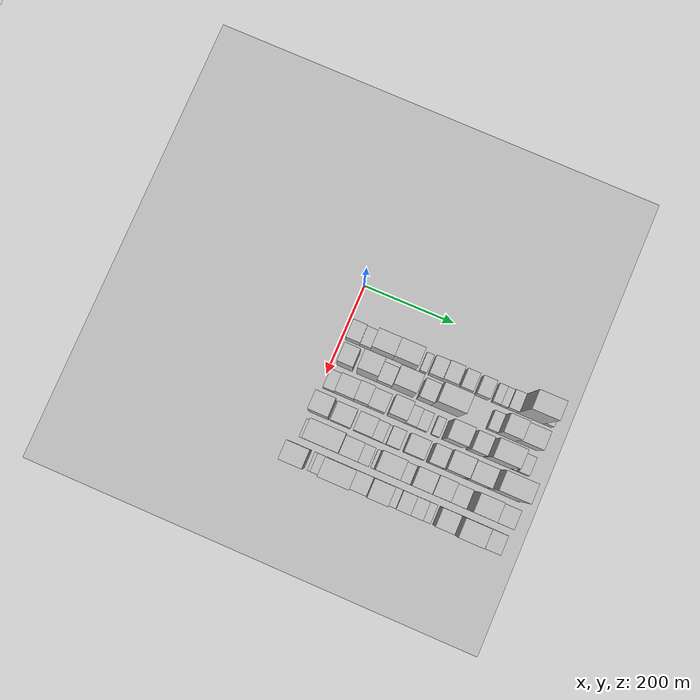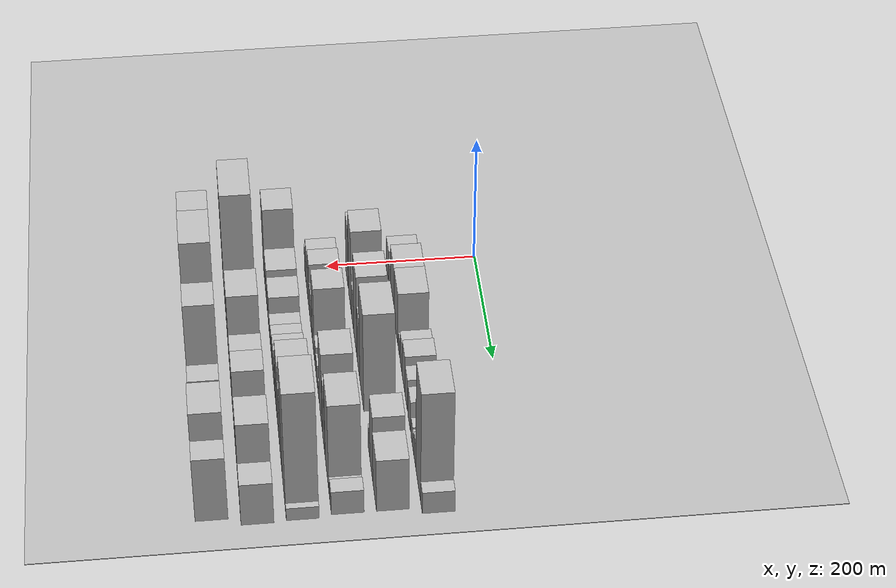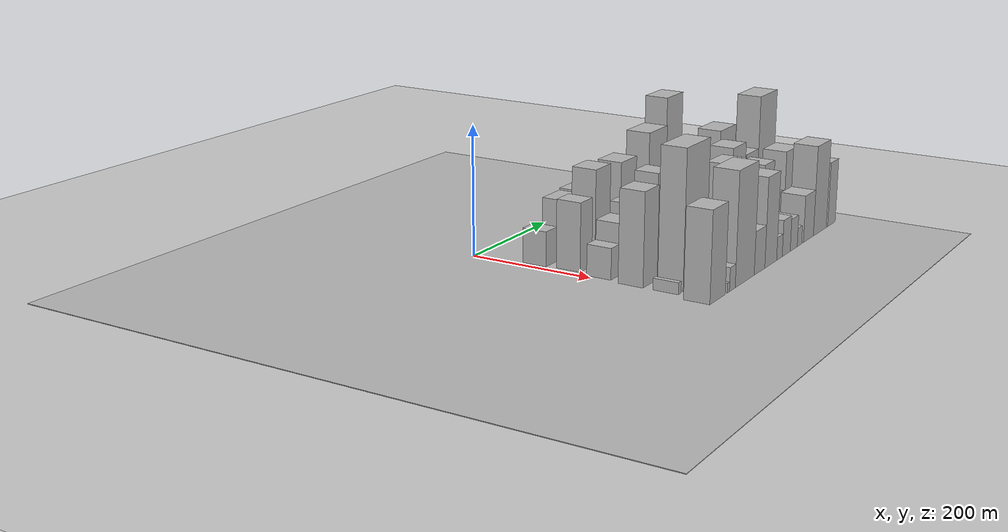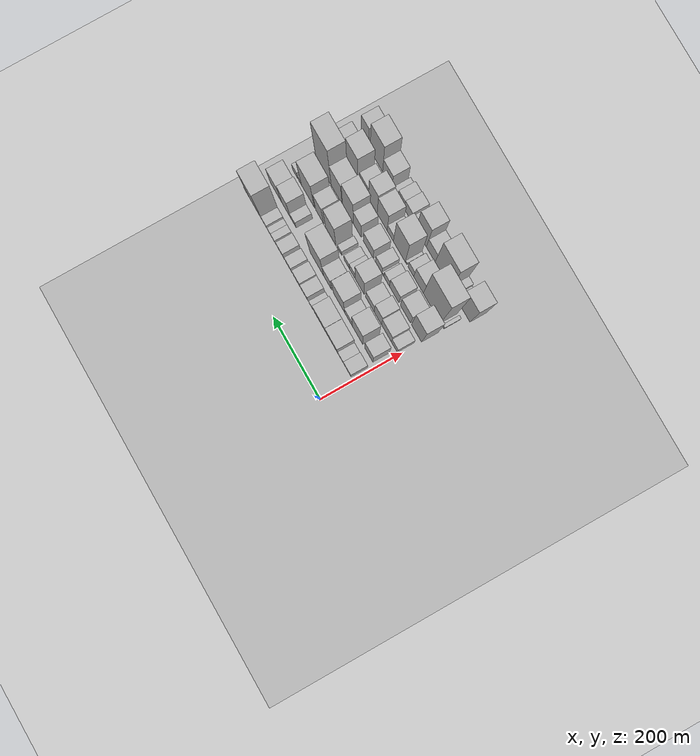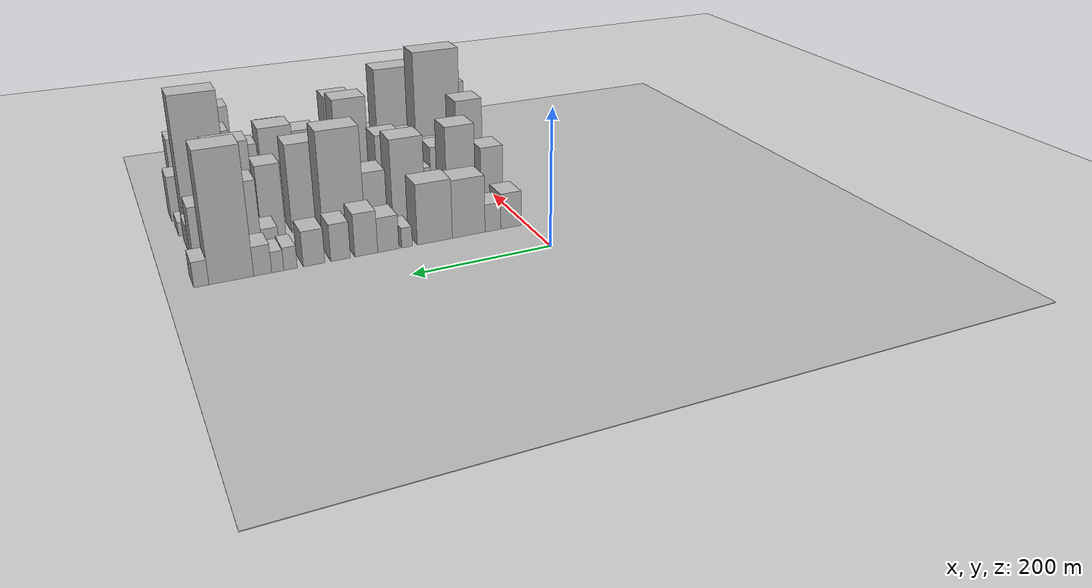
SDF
<sdf version="1.6">
 <world name="default">
  <include><name>ground_plane_1</name><uri>model://HANNAS_ground_plane</uri></include>
  <include>
   <name>ground_plane_2</name>
   <uri>model://HANNAS_ground_plane</uri>
   <pose>100 0 0  0 0 0</pose>
  </include>
  <model name="building_25">
   <static>1</static>
   <pose>100.0000 24.3123 0 0.000000 0.000000 0.000000</pose>
   <link name="link">
    <pose>0 0 27.00 0 0 0</pose>
    <collision name="collision"><geometry><box><size>40.0000 31.4314 54.0000</size></box></geometry></collision>
    <visual name="visual">
     <cast_shadows>0</cast_shadows>
     <geometry><box><size>40.0000 31.4314 54.0000</size></box></geometry>
     <material>
      <script>
       <uri>model://HANNAS_wall/materials/scripts</uri>
       <uri>model://HANNAS_wall/materials/textures</uri>
       <name>vrc/HANNAS_wall</name>
      </script>
     </material>
    </visual>
   </link>
  </model>
  <model name="building_26">
   <static>1</static>
   <pose>100.0000 52.2416 0 0.000000 0.000000 0.000000</pose>
   <link name="link">
    <pose>0 0 21.00 0 0 0</pose>
    <collision name="collision"><geometry><box><size>40.0000 24.4274 42.0000</size></box></geometry></collision>
    <visual name="visual">
     <cast_shadows>0</cast_shadows>
     <geometry><box><size>40.0000 24.4274 42.0000</size></box></geometry>
     <material>
      <script>
       <uri>model://HANNAS_wall/materials/scripts</uri>
       <uri>model://HANNAS_wall/materials/textures</uri>
       <name>vrc/HANNAS_wall</name>
      </script>
     </material>
    </visual>
   </link>
  </model>
  <model name="building_27">
   <static>1</static>
   <pose>100.0000 89.1585 0 0.000000 0.000000 0.000000</pose>
   <link name="link">
    <pose>0 0 43.50 0 0 0</pose>
    <collision name="collision"><geometry><box><size>40.0000 49.4064 87.0000</size></box></geometry></collision>
    <visual name="visual">
     <cast_shadows>0</cast_shadows>
     <geometry><box><size>40.0000 49.4064 87.0000</size></box></geometry>
     <material>
      <script>
       <uri>model://HANNAS_wall/materials/scripts</uri>
       <uri>model://HANNAS_wall/materials/textures</uri>
       <name>vrc/HANNAS_wall</name>
      </script>
     </material>
    </visual>
   </link>
  </model>
  <model name="building_28">
   <static>1</static>
   <pose>100.0000 139.6292 0 0.000000 0.000000 0.000000</pose>
   <link name="link">
    <pose>0 0 45.00 0 0 0</pose>
    <collision name="collision"><geometry><box><size>40.0000 51.5349 90.0000</size></box></geometry></collision>
    <visual name="visual">
     <cast_shadows>0</cast_shadows>
     <geometry><box><size>40.0000 51.5349 90.0000</size></box></geometry>
     <material>
      <script>
       <uri>model://HANNAS_wall/materials/scripts</uri>
       <uri>model://HANNAS_wall/materials/textures</uri>
       <name>vrc/HANNAS_wall</name>
      </script>
     </material>
    </visual>
   </link>
  </model>
  <model name="building_29">
   <static>1</static>
   <pose>100.0000 180.1665 0 0.000000 0.000000 0.000000</pose>
   <link name="link">
    <pose>0 0 15.00 0 0 0</pose>
    <collision name="collision"><geometry><box><size>40.0000 15.5398 30.0000</size></box></geometry></collision>
    <visual name="visual">
     <cast_shadows>0</cast_shadows>
     <geometry><box><size>40.0000 15.5398 30.0000</size></box></geometry>
     <material>
      <script>
       <uri>model://HANNAS_wall/materials/scripts</uri>
       <uri>model://HANNAS_wall/materials/textures</uri>
       <name>vrc/HANNAS_wall</name>
      </script>
     </material>
    </visual>
   </link>
  </model>
  <model name="building_30">
   <static>1</static>
   <pose>100.0000 206.9516 0 0.000000 0.000000 0.000000</pose>
   <link name="link">
    <pose>0 0 25.50 0 0 0</pose>
    <collision name="collision"><geometry><box><size>40.0000 30.0303 51.0000</size></box></geometry></collision>
    <visual name="visual">
     <cast_shadows>0</cast_shadows>
     <geometry><box><size>40.0000 30.0303 51.0000</size></box></geometry>
     <material>
      <script>
       <uri>model://HANNAS_wall/materials/scripts</uri>
       <uri>model://HANNAS_wall/materials/textures</uri>
       <name>vrc/HANNAS_wall</name>
      </script>
     </material>
    </visual>
   </link>
  </model>
  <model name="building_31">
   <static>1</static>
   <pose>100.0000 238.0096 0 0.000000 0.000000 0.000000</pose>
   <link name="link">
    <pose>0 0 31.50 0 0 0</pose>
    <collision name="collision"><geometry><box><size>40.0000 32.0857 63.0000</size></box></geometry></collision>
    <visual name="visual">
     <cast_shadows>0</cast_shadows>
     <geometry><box><size>40.0000 32.0857 63.0000</size></box></geometry>
     <material>
      <script>
       <uri>model://HANNAS_wall/materials/scripts</uri>
       <uri>model://HANNAS_wall/materials/textures</uri>
       <name>vrc/HANNAS_wall</name>
      </script>
     </material>
    </visual>
   </link>
  </model>
  <model name="building_32">
   <static>1</static>
   <pose>100.0000 273.5645 0 0.000000 0.000000 0.000000</pose>
   <link name="link">
    <pose>0 0 27.00 0 0 0</pose>
    <collision name="collision"><geometry><box><size>40.0000 27.0241 54.0000</size></box></geometry></collision>
    <visual name="visual">
     <cast_shadows>0</cast_shadows>
     <geometry><box><size>40.0000 27.0241 54.0000</size></box></geometry>
     <material>
      <script>
       <uri>model://HANNAS_wall/materials/scripts</uri>
       <uri>model://HANNAS_wall/materials/textures</uri>
       <name>vrc/HANNAS_wall</name>
      </script>
     </material>
    </visual>
   </link>
  </model>
  <model name="building_33">
   <static>1</static>
   <pose>100.0000 309.6315 0 0.000000 0.000000 0.000000</pose>
   <link name="link">
    <pose>0 0 25.50 0 0 0</pose>
    <collision name="collision"><geometry><box><size>40.0000 29.1099 51.0000</size></box></geometry></collision>
    <visual name="visual">
     <cast_shadows>0</cast_shadows>
     <geometry><box><size>40.0000 29.1099 51.0000</size></box></geometry>
     <material>
      <script>
       <uri>model://HANNAS_wall/materials/scripts</uri>
       <uri>model://HANNAS_wall/materials/textures</uri>
       <name>vrc/HANNAS_wall</name>
      </script>
     </material>
    </visual>
   </link>
  </model>
  <model name="building_34">
   <static>1</static>
   <pose>100.0000 341.0101 0 0.000000 0.000000 0.000000</pose>
   <link name="link">
    <pose>0 0 16.50 0 0 0</pose>
    <collision name="collision"><geometry><box><size>40.0000 17.6474 33.0000</size></box></geometry></collision>
    <visual name="visual">
     <cast_shadows>0</cast_shadows>
     <geometry><box><size>40.0000 17.6474 33.0000</size></box></geometry>
     <material>
      <script>
       <uri>model://HANNAS_wall/materials/scripts</uri>
       <uri>model://HANNAS_wall/materials/textures</uri>
       <name>vrc/HANNAS_wall</name>
      </script>
     </material>
    </visual>
   </link>
  </model>
  <model name="building_35">
   <static>1</static>
   <pose>100.0000 357.7709 0 0.000000 0.000000 0.000000</pose>
   <link name="link">
    <pose>0 0 15.00 0 0 0</pose>
    <collision name="collision"><geometry><box><size>40.0000 15.8742 30.0000</size></box></geometry></collision>
    <visual name="visual">
     <cast_shadows>0</cast_shadows>
     <geometry><box><size>40.0000 15.8742 30.0000</size></box></geometry>
     <material>
      <script>
       <uri>model://HANNAS_wall/materials/scripts</uri>
       <uri>model://HANNAS_wall/materials/textures</uri>
       <name>vrc/HANNAS_wall</name>
      </script>
     </material>
    </visual>
   </link>
  </model>
  <model name="building_36">
   <static>1</static>
   <pose>100.0000 377.3944 0 0.000000 0.000000 0.000000</pose>
   <link name="link">
    <pose>0 0 21.00 0 0 0</pose>
    <collision name="collision"><geometry><box><size>40.0000 23.3728 42.0000</size></box></geometry></collision>
    <visual name="visual">
     <cast_shadows>0</cast_shadows>
     <geometry><box><size>40.0000 23.3728 42.0000</size></box></geometry>
     <material>
      <script>
       <uri>model://HANNAS_wall/materials/scripts</uri>
       <uri>model://HANNAS_wall/materials/textures</uri>
       <name>vrc/HANNAS_wall</name>
      </script>
     </material>
    </visual>
   </link>
  </model>
  <model name="building_37">
   <static>1</static>
   <pose>100.0000 417.5311 0 0.000000 0.000000 0.000000</pose>
   <link name="link">
    <pose>0 0 91.50 0 0 0</pose>
    <collision name="collision"><geometry><box><size>40.0000 56.9005 183.0000</size></box></geometry></collision>
    <visual name="visual">
     <cast_shadows>0</cast_shadows>
     <geometry><box><size>40.0000 56.9005 183.0000</size></box></geometry>
     <material>
      <script>
       <uri>model://HANNAS_wall/materials/scripts</uri>
       <uri>model://HANNAS_wall/materials/textures</uri>
       <name>vrc/HANNAS_wall</name>
      </script>
     </material>
    </visual>
   </link>
  </model>
  <model name="building_38">
   <static>1</static>
   <pose>100.0000 455.4224 0 0.000000 0.000000 0.000000</pose>
   <link name="link">
    <pose>0 0 18.00 0 0 0</pose>
    <collision name="collision"><geometry><box><size>40.0000 18.8821 36.0000</size></box></geometry></collision>
    <visual name="visual">
     <cast_shadows>0</cast_shadows>
     <geometry><box><size>40.0000 18.8821 36.0000</size></box></geometry>
     <material>
      <script>
       <uri>model://HANNAS_wall/materials/scripts</uri>
       <uri>model://HANNAS_wall/materials/textures</uri>
       <name>vrc/HANNAS_wall</name>
      </script>
     </material>
    </visual>
   </link>
  </model>
  <model name="building_80">
   <static>1</static>
   <pose>155.0000 30.2844 0 0.000000 0.000000 0.000000</pose>
   <link name="link">
    <pose>0 0 52.50 0 0 0</pose>
    <collision name="collision"><geometry><box><size>40.0000 34.2755 105.0000</size></box></geometry></collision>
    <visual name="visual">
     <cast_shadows>0</cast_shadows>
     <geometry><box><size>40.0000 34.2755 105.0000</size></box></geometry>
     <material>
      <script>
       <uri>model://HANNAS_wall/materials/scripts</uri>
       <uri>model://HANNAS_wall/materials/textures</uri>
       <name>vrc/HANNAS_wall</name>
      </script>
     </material>
    </visual>
   </link>
  </model>
  <model name="building_81">
   <static>1</static>
   <pose>155.0000 78.4259 0 0.000000 0.000000 0.000000</pose>
   <link name="link">
    <pose>0 0 72.00 0 0 0</pose>
    <collision name="collision"><geometry><box><size>40.0000 44.0075 144.0000</size></box></geometry></collision>
    <visual name="visual">
     <cast_shadows>0</cast_shadows>
     <geometry><box><size>40.0000 44.0075 144.0000</size></box></geometry>
     <material>
      <script>
       <uri>model://HANNAS_wall/materials/scripts</uri>
       <uri>model://HANNAS_wall/materials/textures</uri>
       <name>vrc/HANNAS_wall</name>
      </script>
     </material>
    </visual>
   </link>
  </model>
  <model name="building_82">
   <static>1</static>
   <pose>155.0000 116.8655 0 0.000000 0.000000 0.000000</pose>
   <link name="link">
    <pose>0 0 30.00 0 0 0</pose>
    <collision name="collision"><geometry><box><size>40.0000 32.8717 60.0000</size></box></geometry></collision>
    <visual name="visual">
     <cast_shadows>0</cast_shadows>
     <geometry><box><size>40.0000 32.8717 60.0000</size></box></geometry>
     <material>
      <script>
       <uri>model://HANNAS_wall/materials/scripts</uri>
       <uri>model://HANNAS_wall/materials/textures</uri>
       <name>vrc/HANNAS_wall</name>
      </script>
     </material>
    </visual>
   </link>
  </model>
  <model name="building_83">
   <static>1</static>
   <pose>155.0000 157.4721 0 0.000000 0.000000 0.000000</pose>
   <link name="link">
    <pose>0 0 69.00 0 0 0</pose>
    <collision name="collision"><geometry><box><size>40.0000 48.3414 138.0000</size></box></geometry></collision>
    <visual name="visual">
     <cast_shadows>0</cast_shadows>
     <geometry><box><size>40.0000 48.3414 138.0000</size></box></geometry>
     <material>
      <script>
       <uri>model://HANNAS_wall/materials/scripts</uri>
       <uri>model://HANNAS_wall/materials/textures</uri>
       <name>vrc/HANNAS_wall</name>
      </script>
     </material>
    </visual>
   </link>
  </model>
  <model name="building_84">
   <static>1</static>
   <pose>155.0000 206.0429 0 0.000000 0.000000 0.000000</pose>
   <link name="link">
    <pose>0 0 48.00 0 0 0</pose>
    <collision name="collision"><geometry><box><size>40.0000 32.8003 96.0000</size></box></geometry></collision>
    <visual name="visual">
     <cast_shadows>0</cast_shadows>
     <geometry><box><size>40.0000 32.8003 96.0000</size></box></geometry>
     <material>
      <script>
       <uri>model://HANNAS_wall/materials/scripts</uri>
       <uri>model://HANNAS_wall/materials/textures</uri>
       <name>vrc/HANNAS_wall</name>
      </script>
     </material>
    </visual>
   </link>
  </model>
  <model name="building_85">
   <static>1</static>
   <pose>155.0000 252.2715 0 0.000000 0.000000 0.000000</pose>
   <link name="link">
    <pose>0 0 82.50 0 0 0</pose>
    <collision name="collision"><geometry><box><size>40.0000 59.6567 165.0000</size></box></geometry></collision>
    <visual name="visual">
     <cast_shadows>0</cast_shadows>
     <geometry><box><size>40.0000 59.6567 165.0000</size></box></geometry>
     <material>
      <script>
       <uri>model://HANNAS_wall/materials/scripts</uri>
       <uri>model://HANNAS_wall/materials/textures</uri>
       <name>vrc/HANNAS_wall</name>
      </script>
     </material>
    </visual>
   </link>
  </model>
  <model name="building_86">
   <static>1</static>
   <pose>155.0000 354.3469 0 0.000000 0.000000 0.000000</pose>
   <link name="link">
    <pose>0 0 19.50 0 0 0</pose>
    <collision name="collision"><geometry><box><size>40.0000 22.8314 39.0000</size></box></geometry></collision>
    <visual name="visual">
     <cast_shadows>0</cast_shadows>
     <geometry><box><size>40.0000 22.8314 39.0000</size></box></geometry>
     <material>
      <script>
       <uri>model://HANNAS_wall/materials/scripts</uri>
       <uri>model://HANNAS_wall/materials/textures</uri>
       <name>vrc/HANNAS_wall</name>
      </script>
     </material>
    </visual>
   </link>
  </model>
  <model name="building_87">
   <static>1</static>
   <pose>155.0000 386.0031 0 0.000000 0.000000 0.000000</pose>
   <link name="link">
    <pose>0 0 55.50 0 0 0</pose>
    <collision name="collision"><geometry><box><size>40.0000 40.4810 111.0000</size></box></geometry></collision>
    <visual name="visual">
     <cast_shadows>0</cast_shadows>
     <geometry><box><size>40.0000 40.4810 111.0000</size></box></geometry>
     <material>
      <script>
       <uri>model://HANNAS_wall/materials/scripts</uri>
       <uri>model://HANNAS_wall/materials/textures</uri>
       <name>vrc/HANNAS_wall</name>
      </script>
     </material>
    </visual>
   </link>
  </model>
  <model name="building_88">
   <static>1</static>
   <pose>155.0000 430.9013 0 0.000000 0.000000 0.000000</pose>
   <link name="link">
    <pose>0 0 43.50 0 0 0</pose>
    <collision name="collision"><geometry><box><size>40.0000 49.3153 87.0000</size></box></geometry></collision>
    <visual name="visual">
     <cast_shadows>0</cast_shadows>
     <geometry><box><size>40.0000 49.3153 87.0000</size></box></geometry>
     <material>
      <script>
       <uri>model://HANNAS_wall/materials/scripts</uri>
       <uri>model://HANNAS_wall/materials/textures</uri>
       <name>vrc/HANNAS_wall</name>
      </script>
     </material>
    </visual>
   </link>
  </model>
  <model name="building_125">
   <static>1</static>
   <pose>210.0000 18.6129 0 0.000000 0.000000 0.000000</pose>
   <link name="link">
    <pose>0 0 24.00 0 0 0</pose>
    <collision name="collision"><geometry><box><size>40.0000 25.7530 48.0000</size></box></geometry></collision>
    <visual name="visual">
     <cast_shadows>0</cast_shadows>
     <geometry><box><size>40.0000 25.7530 48.0000</size></box></geometry>
     <material>
      <script>
       <uri>model://HANNAS_wall/materials/scripts</uri>
       <uri>model://HANNAS_wall/materials/textures</uri>
       <name>vrc/HANNAS_wall</name>
      </script>
     </material>
    </visual>
   </link>
  </model>
  <model name="building_126">
   <static>1</static>
   <pose>210.0000 52.4357 0 0.000000 0.000000 0.000000</pose>
   <link name="link">
    <pose>0 0 39.00 0 0 0</pose>
    <collision name="collision"><geometry><box><size>40.0000 41.8926 78.0000</size></box></geometry></collision>
    <visual name="visual">
     <cast_shadows>0</cast_shadows>
     <geometry><box><size>40.0000 41.8926 78.0000</size></box></geometry>
     <material>
      <script>
       <uri>model://HANNAS_wall/materials/scripts</uri>
       <uri>model://HANNAS_wall/materials/textures</uri>
       <name>vrc/HANNAS_wall</name>
      </script>
     </material>
    </visual>
   </link>
  </model>
  <model name="building_127">
   <static>1</static>
   <pose>210.0000 88.7464 0 0.000000 0.000000 0.000000</pose>
   <link name="link">
    <pose>0 0 48.00 0 0 0</pose>
    <collision name="collision"><geometry><box><size>40.0000 30.7289 96.0000</size></box></geometry></collision>
    <visual name="visual">
     <cast_shadows>0</cast_shadows>
     <geometry><box><size>40.0000 30.7289 96.0000</size></box></geometry>
     <material>
      <script>
       <uri>model://HANNAS_wall/materials/scripts</uri>
       <uri>model://HANNAS_wall/materials/textures</uri>
       <name>vrc/HANNAS_wall</name>
      </script>
     </material>
    </visual>
   </link>
  </model>
  <model name="building_128">
   <static>1</static>
   <pose>210.0000 122.4856 0 0.000000 0.000000 0.000000</pose>
   <link name="link">
    <pose>0 0 33.00 0 0 0</pose>
    <collision name="collision"><geometry><box><size>40.0000 36.7495 66.0000</size></box></geometry></collision>
    <visual name="visual">
     <cast_shadows>0</cast_shadows>
     <geometry><box><size>40.0000 36.7495 66.0000</size></box></geometry>
     <material>
      <script>
       <uri>model://HANNAS_wall/materials/scripts</uri>
       <uri>model://HANNAS_wall/materials/textures</uri>
       <name>vrc/HANNAS_wall</name>
      </script>
     </material>
    </visual>
   </link>
  </model>
  <model name="building_129">
   <static>1</static>
   <pose>210.0000 166.2036 0 0.000000 0.000000 0.000000</pose>
   <link name="link">
    <pose>0 0 63.00 0 0 0</pose>
    <collision name="collision"><geometry><box><size>40.0000 38.6865 126.0000</size></box></geometry></collision>
    <visual name="visual">
     <cast_shadows>0</cast_shadows>
     <geometry><box><size>40.0000 38.6865 126.0000</size></box></geometry>
     <material>
      <script>
       <uri>model://HANNAS_wall/materials/scripts</uri>
       <uri>model://HANNAS_wall/materials/textures</uri>
       <name>vrc/HANNAS_wall</name>
      </script>
     </material>
    </visual>
   </link>
  </model>
  <model name="building_130">
   <static>1</static>
   <pose>210.0000 197.9665 0 0.000000 0.000000 0.000000</pose>
   <link name="link">
    <pose>0 0 24.00 0 0 0</pose>
    <collision name="collision"><geometry><box><size>40.0000 24.8393 48.0000</size></box></geometry></collision>
    <visual name="visual">
     <cast_shadows>0</cast_shadows>
     <geometry><box><size>40.0000 24.8393 48.0000</size></box></geometry>
     <material>
      <script>
       <uri>model://HANNAS_wall/materials/scripts</uri>
       <uri>model://HANNAS_wall/materials/textures</uri>
       <name>vrc/HANNAS_wall</name>
      </script>
     </material>
    </visual>
   </link>
  </model>
  <model name="building_131">
   <static>1</static>
   <pose>210.0000 221.9935 0 0.000000 0.000000 0.000000</pose>
   <link name="link">
    <pose>0 0 19.50 0 0 0</pose>
    <collision name="collision"><geometry><box><size>40.0000 23.2146 39.0000</size></box></geometry></collision>
    <visual name="visual">
     <cast_shadows>0</cast_shadows>
     <geometry><box><size>40.0000 23.2146 39.0000</size></box></geometry>
     <material>
      <script>
       <uri>model://HANNAS_wall/materials/scripts</uri>
       <uri>model://HANNAS_wall/materials/textures</uri>
       <name>vrc/HANNAS_wall</name>
      </script>
     </material>
    </visual>
   </link>
  </model>
  <model name="building_132">
   <static>1</static>
   <pose>210.0000 252.3618 0 0.000000 0.000000 0.000000</pose>
   <link name="link">
    <pose>0 0 15.00 0 0 0</pose>
    <collision name="collision"><geometry><box><size>40.0000 17.5220 30.0000</size></box></geometry></collision>
    <visual name="visual">
     <cast_shadows>0</cast_shadows>
     <geometry><box><size>40.0000 17.5220 30.0000</size></box></geometry>
     <material>
      <script>
       <uri>model://HANNAS_wall/materials/scripts</uri>
       <uri>model://HANNAS_wall/materials/textures</uri>
       <name>vrc/HANNAS_wall</name>
      </script>
     </material>
    </visual>
   </link>
  </model>
  <model name="building_133">
   <static>1</static>
   <pose>210.0000 290.5511 0 0.000000 0.000000 0.000000</pose>
   <link name="link">
    <pose>0 0 66.00 0 0 0</pose>
    <collision name="collision"><geometry><box><size>40.0000 44.8566 132.0000</size></box></geometry></collision>
    <visual name="visual">
     <cast_shadows>0</cast_shadows>
     <geometry><box><size>40.0000 44.8566 132.0000</size></box></geometry>
     <material>
      <script>
       <uri>model://HANNAS_wall/materials/scripts</uri>
       <uri>model://HANNAS_wall/materials/textures</uri>
       <name>vrc/HANNAS_wall</name>
      </script>
     </material>
    </visual>
   </link>
  </model>
  <model name="building_134">
   <static>1</static>
   <pose>210.0000 338.9120 0 0.000000 0.000000 0.000000</pose>
   <link name="link">
    <pose>0 0 54.00 0 0 0</pose>
    <collision name="collision"><geometry><box><size>40.0000 33.8652 108.0000</size></box></geometry></collision>
    <visual name="visual">
     <cast_shadows>0</cast_shadows>
     <geometry><box><size>40.0000 33.8652 108.0000</size></box></geometry>
     <material>
      <script>
       <uri>model://HANNAS_wall/materials/scripts</uri>
       <uri>model://HANNAS_wall/materials/textures</uri>
       <name>vrc/HANNAS_wall</name>
      </script>
     </material>
    </visual>
   </link>
  </model>
  <model name="building_135">
   <static>1</static>
   <pose>210.0000 389.4150 0 0.000000 0.000000 0.000000</pose>
   <link name="link">
    <pose>0 0 73.50 0 0 0</pose>
    <collision name="collision"><geometry><box><size>40.0000 57.1408 147.0000</size></box></geometry></collision>
    <visual name="visual">
     <cast_shadows>0</cast_shadows>
     <geometry><box><size>40.0000 57.1408 147.0000</size></box></geometry>
     <material>
      <script>
       <uri>model://HANNAS_wall/materials/scripts</uri>
       <uri>model://HANNAS_wall/materials/textures</uri>
       <name>vrc/HANNAS_wall</name>
      </script>
     </material>
    </visual>
   </link>
  </model>
  <model name="building_136">
   <static>1</static>
   <pose>210.0000 424.0996 0 0.000000 0.000000 0.000000</pose>
   <link name="link">
    <pose>0 0 13.50 0 0 0</pose>
    <collision name="collision"><geometry><box><size>40.0000 12.2284 27.0000</size></box></geometry></collision>
    <visual name="visual">
     <cast_shadows>0</cast_shadows>
     <geometry><box><size>40.0000 12.2284 27.0000</size></box></geometry>
     <material>
      <script>
       <uri>model://HANNAS_wall/materials/scripts</uri>
       <uri>model://HANNAS_wall/materials/textures</uri>
       <name>vrc/HANNAS_wall</name>
      </script>
     </material>
    </visual>
   </link>
  </model>
  <model name="building_137">
   <static>1</static>
   <pose>210.0000 444.4427 0 0.000000 0.000000 0.000000</pose>
   <link name="link">
    <pose>0 0 19.50 0 0 0</pose>
    <collision name="collision"><geometry><box><size>40.0000 22.4580 39.0000</size></box></geometry></collision>
    <visual name="visual">
     <cast_shadows>0</cast_shadows>
     <geometry><box><size>40.0000 22.4580 39.0000</size></box></geometry>
     <material>
      <script>
       <uri>model://HANNAS_wall/materials/scripts</uri>
       <uri>model://HANNAS_wall/materials/textures</uri>
       <name>vrc/HANNAS_wall</name>
      </script>
     </material>
    </visual>
   </link>
  </model>
  <model name="building_175">
   <static>1</static>
   <pose>265.0000 20.9119 0 0.000000 0.000000 0.000000</pose>
   <link name="link">
    <pose>0 0 70.50 0 0 0</pose>
    <collision name="collision"><geometry><box><size>40.0000 42.7556 141.0000</size></box></geometry></collision>
    <visual name="visual">
     <cast_shadows>0</cast_shadows>
     <geometry><box><size>40.0000 42.7556 141.0000</size></box></geometry>
     <material>
      <script>
       <uri>model://HANNAS_wall/materials/scripts</uri>
       <uri>model://HANNAS_wall/materials/textures</uri>
       <name>vrc/HANNAS_wall</name>
      </script>
     </material>
    </visual>
   </link>
  </model>
  <model name="building_176">
   <static>1</static>
   <pose>265.0000 67.9492 0 0.000000 0.000000 0.000000</pose>
   <link name="link">
    <pose>0 0 39.00 0 0 0</pose>
    <collision name="collision"><geometry><box><size>40.0000 43.3189 78.0000</size></box></geometry></collision>
    <visual name="visual">
     <cast_shadows>0</cast_shadows>
     <geometry><box><size>40.0000 43.3189 78.0000</size></box></geometry>
     <material>
      <script>
       <uri>model://HANNAS_wall/materials/scripts</uri>
       <uri>model://HANNAS_wall/materials/textures</uri>
       <name>vrc/HANNAS_wall</name>
      </script>
     </material>
    </visual>
   </link>
  </model>
  <model name="building_177">
   <static>1</static>
   <pose>265.0000 115.8186 0 0.000000 0.000000 0.000000</pose>
   <link name="link">
    <pose>0 0 36.00 0 0 0</pose>
    <collision name="collision"><geometry><box><size>40.0000 40.4199 72.0000</size></box></geometry></collision>
    <visual name="visual">
     <cast_shadows>0</cast_shadows>
     <geometry><box><size>40.0000 40.4199 72.0000</size></box></geometry>
     <material>
      <script>
       <uri>model://HANNAS_wall/materials/scripts</uri>
       <uri>model://HANNAS_wall/materials/textures</uri>
       <name>vrc/HANNAS_wall</name>
      </script>
     </material>
    </visual>
   </link>
  </model>
  <model name="building_178">
   <static>1</static>
   <pose>265.0000 147.9122 0 0.000000 0.000000 0.000000</pose>
   <link name="link">
    <pose>0 0 22.50 0 0 0</pose>
    <collision name="collision"><geometry><box><size>40.0000 23.7673 45.0000</size></box></geometry></collision>
    <visual name="visual">
     <cast_shadows>0</cast_shadows>
     <geometry><box><size>40.0000 23.7673 45.0000</size></box></geometry>
     <material>
      <script>
       <uri>model://HANNAS_wall/materials/scripts</uri>
       <uri>model://HANNAS_wall/materials/textures</uri>
       <name>vrc/HANNAS_wall</name>
      </script>
     </material>
    </visual>
   </link>
  </model>
  <model name="building_179">
   <static>1</static>
   <pose>265.0000 163.5779 0 0.000000 0.000000 0.000000</pose>
   <link name="link">
    <pose>0 0 9.00 0 0 0</pose>
    <collision name="collision"><geometry><box><size>40.0000 7.5643 18.0000</size></box></geometry></collision>
    <visual name="visual">
     <cast_shadows>0</cast_shadows>
     <geometry><box><size>40.0000 7.5643 18.0000</size></box></geometry>
     <material>
      <script>
       <uri>model://HANNAS_wall/materials/scripts</uri>
       <uri>model://HANNAS_wall/materials/textures</uri>
       <name>vrc/HANNAS_wall</name>
      </script>
     </material>
    </visual>
   </link>
  </model>
  <model name="building_180">
   <static>1</static>
   <pose>265.0000 181.6731 0 0.000000 0.000000 0.000000</pose>
   <link name="link">
    <pose>0 0 27.00 0 0 0</pose>
    <collision name="collision"><geometry><box><size>40.0000 28.6261 54.0000</size></box></geometry></collision>
    <visual name="visual">
     <cast_shadows>0</cast_shadows>
     <geometry><box><size>40.0000 28.6261 54.0000</size></box></geometry>
     <material>
      <script>
       <uri>model://HANNAS_wall/materials/scripts</uri>
       <uri>model://HANNAS_wall/materials/textures</uri>
       <name>vrc/HANNAS_wall</name>
      </script>
     </material>
    </visual>
   </link>
  </model>
  <model name="building_181">
   <static>1</static>
   <pose>265.0000 226.4719 0 0.000000 0.000000 0.000000</pose>
   <link name="link">
    <pose>0 0 36.00 0 0 0</pose>
    <collision name="collision"><geometry><box><size>40.0000 42.9714 72.0000</size></box></geometry></collision>
    <visual name="visual">
     <cast_shadows>0</cast_shadows>
     <geometry><box><size>40.0000 42.9714 72.0000</size></box></geometry>
     <material>
      <script>
       <uri>model://HANNAS_wall/materials/scripts</uri>
       <uri>model://HANNAS_wall/materials/textures</uri>
       <name>vrc/HANNAS_wall</name>
      </script>
     </material>
    </visual>
   </link>
  </model>
  <model name="building_182">
   <static>1</static>
   <pose>265.0000 273.5150 0 0.000000 0.000000 0.000000</pose>
   <link name="link">
    <pose>0 0 46.50 0 0 0</pose>
    <collision name="collision"><geometry><box><size>40.0000 33.1149 93.0000</size></box></geometry></collision>
    <visual name="visual">
     <cast_shadows>0</cast_shadows>
     <geometry><box><size>40.0000 33.1149 93.0000</size></box></geometry>
     <material>
      <script>
       <uri>model://HANNAS_wall/materials/scripts</uri>
       <uri>model://HANNAS_wall/materials/textures</uri>
       <name>vrc/HANNAS_wall</name>
      </script>
     </material>
    </visual>
   </link>
  </model>
  <model name="building_183">
   <static>1</static>
   <pose>265.0000 313.5343 0 0.000000 0.000000 0.000000</pose>
   <link name="link">
    <pose>0 0 70.50 0 0 0</pose>
    <collision name="collision"><geometry><box><size>40.0000 46.9236 141.0000</size></box></geometry></collision>
    <visual name="visual">
     <cast_shadows>0</cast_shadows>
     <geometry><box><size>40.0000 46.9236 141.0000</size></box></geometry>
     <material>
      <script>
       <uri>model://HANNAS_wall/materials/scripts</uri>
       <uri>model://HANNAS_wall/materials/textures</uri>
       <name>vrc/HANNAS_wall</name>
      </script>
     </material>
    </visual>
   </link>
  </model>
  <model name="building_184">
   <static>1</static>
   <pose>265.0000 363.2095 0 0.000000 0.000000 0.000000</pose>
   <link name="link">
    <pose>0 0 60.00 0 0 0</pose>
    <collision name="collision"><geometry><box><size>40.0000 46.4269 120.0000</size></box></geometry></collision>
    <visual name="visual">
     <cast_shadows>0</cast_shadows>
     <geometry><box><size>40.0000 46.4269 120.0000</size></box></geometry>
     <material>
      <script>
       <uri>model://HANNAS_wall/materials/scripts</uri>
       <uri>model://HANNAS_wall/materials/textures</uri>
       <name>vrc/HANNAS_wall</name>
      </script>
     </material>
    </visual>
   </link>
  </model>
  <model name="building_185">
   <static>1</static>
   <pose>265.0000 418.6877 0 0.000000 0.000000 0.000000</pose>
   <link name="link">
    <pose>0 0 102.00 0 0 0</pose>
    <collision name="collision"><geometry><box><size>40.0000 64.5295 204.0000</size></box></geometry></collision>
    <visual name="visual">
     <cast_shadows>0</cast_shadows>
     <geometry><box><size>40.0000 64.5295 204.0000</size></box></geometry>
     <material>
      <script>
       <uri>model://HANNAS_wall/materials/scripts</uri>
       <uri>model://HANNAS_wall/materials/textures</uri>
       <name>vrc/HANNAS_wall</name>
      </script>
     </material>
    </visual>
   </link>
  </model>
  <model name="building_186">
   <static>1</static>
   <pose>265.0000 455.5057 0 0.000000 0.000000 0.000000</pose>
   <link name="link">
    <pose>0 0 10.50 0 0 0</pose>
    <collision name="collision"><geometry><box><size>40.0000 9.1065 21.0000</size></box></geometry></collision>
    <visual name="visual">
     <cast_shadows>0</cast_shadows>
     <geometry><box><size>40.0000 9.1065 21.0000</size></box></geometry>
     <material>
      <script>
       <uri>model://HANNAS_wall/materials/scripts</uri>
       <uri>model://HANNAS_wall/materials/textures</uri>
       <name>vrc/HANNAS_wall</name>
      </script>
     </material>
    </visual>
   </link>
  </model>
  <model name="building_221">
   <static>1</static>
   <pose>320.0000 4.4426 0 0.000000 0.000000 0.000000</pose>
   <link name="link">
    <pose>0 0 9.00 0 0 0</pose>
    <collision name="collision"><geometry><box><size>40.0000 8.3928 18.0000</size></box></geometry></collision>
    <visual name="visual">
     <cast_shadows>0</cast_shadows>
     <geometry><box><size>40.0000 8.3928 18.0000</size></box></geometry>
     <material>
      <script>
       <uri>model://HANNAS_wall/materials/scripts</uri>
       <uri>model://HANNAS_wall/materials/textures</uri>
       <name>vrc/HANNAS_wall</name>
      </script>
     </material>
    </visual>
   </link>
  </model>
  <model name="building_222">
   <static>1</static>
   <pose>320.0000 51.2324 0 0.000000 0.000000 0.000000</pose>
   <link name="link">
    <pose>0 0 103.50 0 0 0</pose>
    <collision name="collision"><geometry><box><size>40.0000 73.1867 207.0000</size></box></geometry></collision>
    <visual name="visual">
     <cast_shadows>0</cast_shadows>
     <geometry><box><size>40.0000 73.1867 207.0000</size></box></geometry>
     <material>
      <script>
       <uri>model://HANNAS_wall/materials/scripts</uri>
       <uri>model://HANNAS_wall/materials/textures</uri>
       <name>vrc/HANNAS_wall</name>
      </script>
     </material>
    </visual>
   </link>
  </model>
  <model name="building_223">
   <static>1</static>
   <pose>320.0000 108.2170 0 0.000000 0.000000 0.000000</pose>
   <link name="link">
    <pose>0 0 40.50 0 0 0</pose>
    <collision name="collision"><geometry><box><size>40.0000 40.7826 81.0000</size></box></geometry></collision>
    <visual name="visual">
     <cast_shadows>0</cast_shadows>
     <geometry><box><size>40.0000 40.7826 81.0000</size></box></geometry>
     <material>
      <script>
       <uri>model://HANNAS_wall/materials/scripts</uri>
       <uri>model://HANNAS_wall/materials/textures</uri>
       <name>vrc/HANNAS_wall</name>
      </script>
     </material>
    </visual>
   </link>
  </model>
  <model name="building_224">
   <static>1</static>
   <pose>320.0000 140.7177 0 0.000000 0.000000 0.000000</pose>
   <link name="link">
    <pose>0 0 22.50 0 0 0</pose>
    <collision name="collision"><geometry><box><size>40.0000 24.2188 45.0000</size></box></geometry></collision>
    <visual name="visual">
     <cast_shadows>0</cast_shadows>
     <geometry><box><size>40.0000 24.2188 45.0000</size></box></geometry>
     <material>
      <script>
       <uri>model://HANNAS_wall/materials/scripts</uri>
       <uri>model://HANNAS_wall/materials/textures</uri>
       <name>vrc/HANNAS_wall</name>
      </script>
     </material>
    </visual>
   </link>
  </model>
  <model name="building_225">
   <static>1</static>
   <pose>320.0000 161.2985 0 0.000000 0.000000 0.000000</pose>
   <link name="link">
    <pose>0 0 7.50 0 0 0</pose>
    <collision name="collision"><geometry><box><size>40.0000 6.9427 15.0000</size></box></geometry></collision>
    <visual name="visual">
     <cast_shadows>0</cast_shadows>
     <geometry><box><size>40.0000 6.9427 15.0000</size></box></geometry>
     <material>
      <script>
       <uri>model://HANNAS_wall/materials/scripts</uri>
       <uri>model://HANNAS_wall/materials/textures</uri>
       <name>vrc/HANNAS_wall</name>
      </script>
     </material>
    </visual>
   </link>
  </model>
  <model name="building_226">
   <static>1</static>
   <pose>320.0000 190.2088 0 0.000000 0.000000 0.000000</pose>
   <link name="link">
    <pose>0 0 75.00 0 0 0</pose>
    <collision name="collision"><geometry><box><size>40.0000 50.8778 150.0000</size></box></geometry></collision>
    <visual name="visual">
     <cast_shadows>0</cast_shadows>
     <geometry><box><size>40.0000 50.8778 150.0000</size></box></geometry>
     <material>
      <script>
       <uri>model://HANNAS_wall/materials/scripts</uri>
       <uri>model://HANNAS_wall/materials/textures</uri>
       <name>vrc/HANNAS_wall</name>
      </script>
     </material>
    </visual>
   </link>
  </model>
  <model name="building_227">
   <static>1</static>
   <pose>320.0000 229.1338 0 0.000000 0.000000 0.000000</pose>
   <link name="link">
    <pose>0 0 22.50 0 0 0</pose>
    <collision name="collision"><geometry><box><size>40.0000 26.9721 45.0000</size></box></geometry></collision>
    <visual name="visual">
     <cast_shadows>0</cast_shadows>
     <geometry><box><size>40.0000 26.9721 45.0000</size></box></geometry>
     <material>
      <script>
       <uri>model://HANNAS_wall/materials/scripts</uri>
       <uri>model://HANNAS_wall/materials/textures</uri>
       <name>vrc/HANNAS_wall</name>
      </script>
     </material>
    </visual>
   </link>
  </model>
  <model name="building_228">
   <static>1</static>
   <pose>320.0000 263.7625 0 0.000000 0.000000 0.000000</pose>
   <link name="link">
    <pose>0 0 55.50 0 0 0</pose>
    <collision name="collision"><geometry><box><size>40.0000 42.2855 111.0000</size></box></geometry></collision>
    <visual name="visual">
     <cast_shadows>0</cast_shadows>
     <geometry><box><size>40.0000 42.2855 111.0000</size></box></geometry>
     <material>
      <script>
       <uri>model://HANNAS_wall/materials/scripts</uri>
       <uri>model://HANNAS_wall/materials/textures</uri>
       <name>vrc/HANNAS_wall</name>
      </script>
     </material>
    </visual>
   </link>
  </model>
  <model name="building_229">
   <static>1</static>
   <pose>320.0000 303.6570 0 0.000000 0.000000 0.000000</pose>
   <link name="link">
    <pose>0 0 61.50 0 0 0</pose>
    <collision name="collision"><geometry><box><size>40.0000 37.5035 123.0000</size></box></geometry></collision>
    <visual name="visual">
     <cast_shadows>0</cast_shadows>
     <geometry><box><size>40.0000 37.5035 123.0000</size></box></geometry>
     <material>
      <script>
       <uri>model://HANNAS_wall/materials/scripts</uri>
       <uri>model://HANNAS_wall/materials/textures</uri>
       <name>vrc/HANNAS_wall</name>
      </script>
     </material>
    </visual>
   </link>
  </model>
  <model name="building_230">
   <static>1</static>
   <pose>320.0000 341.9934 0 0.000000 0.000000 0.000000</pose>
   <link name="link">
    <pose>0 0 33.00 0 0 0</pose>
    <collision name="collision"><geometry><box><size>40.0000 39.1692 66.0000</size></box></geometry></collision>
    <visual name="visual">
     <cast_shadows>0</cast_shadows>
     <geometry><box><size>40.0000 39.1692 66.0000</size></box></geometry>
     <material>
      <script>
       <uri>model://HANNAS_wall/materials/scripts</uri>
       <uri>model://HANNAS_wall/materials/textures</uri>
       <name>vrc/HANNAS_wall</name>
      </script>
     </material>
    </visual>
   </link>
  </model>
  <model name="building_231">
   <static>1</static>
   <pose>320.0000 393.3136 0 0.000000 0.000000 0.000000</pose>
   <link name="link">
    <pose>0 0 63.00 0 0 0</pose>
    <collision name="collision"><geometry><box><size>40.0000 49.4712 126.0000</size></box></geometry></collision>
    <visual name="visual">
     <cast_shadows>0</cast_shadows>
     <geometry><box><size>40.0000 49.4712 126.0000</size></box></geometry>
     <material>
      <script>
       <uri>model://HANNAS_wall/materials/scripts</uri>
       <uri>model://HANNAS_wall/materials/textures</uri>
       <name>vrc/HANNAS_wall</name>
      </script>
     </material>
    </visual>
   </link>
  </model>
  <model name="building_232">
   <static>1</static>
   <pose>320.0000 443.6012 0 0.000000 0.000000 0.000000</pose>
   <link name="link">
    <pose>0 0 34.50 0 0 0</pose>
    <collision name="collision"><geometry><box><size>40.0000 37.1041 69.0000</size></box></geometry></collision>
    <visual name="visual">
     <cast_shadows>0</cast_shadows>
     <geometry><box><size>40.0000 37.1041 69.0000</size></box></geometry>
     <material>
      <script>
       <uri>model://HANNAS_wall/materials/scripts</uri>
       <uri>model://HANNAS_wall/materials/textures</uri>
       <name>vrc/HANNAS_wall</name>
      </script>
     </material>
    </visual>
   </link>
  </model>
  <model name="building_268">
   <static>1</static>
   <pose>375.0000 10.4688 0 0.000000 0.000000 0.000000</pose>
   <link name="link">
    <pose>0 0 67.50 0 0 0</pose>
    <collision name="collision"><geometry><box><size>40.0000 49.3656 135.0000</size></box></geometry></collision>
    <visual name="visual">
     <cast_shadows>0</cast_shadows>
     <geometry><box><size>40.0000 49.3656 135.0000</size></box></geometry>
     <material>
      <script>
       <uri>model://HANNAS_wall/materials/scripts</uri>
       <uri>model://HANNAS_wall/materials/textures</uri>
       <name>vrc/HANNAS_wall</name>
      </script>
     </material>
    </visual>
   </link>
  </model>
  <model name="building_269">
   <static>1</static>
   <pose>375.0000 45.5613 0 0.000000 0.000000 0.000000</pose>
   <link name="link">
    <pose>0 0 7.50 0 0 0</pose>
    <collision name="collision"><geometry><box><size>40.0000 6.8195 15.0000</size></box></geometry></collision>
    <visual name="visual">
     <cast_shadows>0</cast_shadows>
     <geometry><box><size>40.0000 6.8195 15.0000</size></box></geometry>
     <material>
      <script>
       <uri>model://HANNAS_wall/materials/scripts</uri>
       <uri>model://HANNAS_wall/materials/textures</uri>
       <name>vrc/HANNAS_wall</name>
      </script>
     </material>
    </visual>
   </link>
  </model>
  <model name="building_270">
   <static>1</static>
   <pose>375.0000 58.5379 0 0.000000 0.000000 0.000000</pose>
   <link name="link">
    <pose>0 0 18.00 0 0 0</pose>
    <collision name="collision"><geometry><box><size>40.0000 19.1337 36.0000</size></box></geometry></collision>
    <visual name="visual">
     <cast_shadows>0</cast_shadows>
     <geometry><box><size>40.0000 19.1337 36.0000</size></box></geometry>
     <material>
      <script>
       <uri>model://HANNAS_wall/materials/scripts</uri>
       <uri>model://HANNAS_wall/materials/textures</uri>
       <name>vrc/HANNAS_wall</name>
      </script>
     </material>
    </visual>
   </link>
  </model>
  <model name="building_271">
   <static>1</static>
   <pose>375.0000 100.6767 0 0.000000 0.000000 0.000000</pose>
   <link name="link">
    <pose>0 0 85.50 0 0 0</pose>
    <collision name="collision"><geometry><box><size>40.0000 65.1439 171.0000</size></box></geometry></collision>
    <visual name="visual">
     <cast_shadows>0</cast_shadows>
     <geometry><box><size>40.0000 65.1439 171.0000</size></box></geometry>
     <material>
      <script>
       <uri>model://HANNAS_wall/materials/scripts</uri>
       <uri>model://HANNAS_wall/materials/textures</uri>
       <name>vrc/HANNAS_wall</name>
      </script>
     </material>
    </visual>
   </link>
  </model>
  <model name="building_272">
   <static>1</static>
   <pose>375.0000 152.0726 0 0.000000 0.000000 0.000000</pose>
   <link name="link">
    <pose>0 0 33.00 0 0 0</pose>
    <collision name="collision"><geometry><box><size>40.0000 37.6478 66.0000</size></box></geometry></collision>
    <visual name="visual">
     <cast_shadows>0</cast_shadows>
     <geometry><box><size>40.0000 37.6478 66.0000</size></box></geometry>
     <material>
      <script>
       <uri>model://HANNAS_wall/materials/scripts</uri>
       <uri>model://HANNAS_wall/materials/textures</uri>
       <name>vrc/HANNAS_wall</name>
      </script>
     </material>
    </visual>
   </link>
  </model>
  <model name="building_273">
   <static>1</static>
   <pose>375.0000 192.6204 0 0.000000 0.000000 0.000000</pose>
   <link name="link">
    <pose>0 0 69.00 0 0 0</pose>
    <collision name="collision"><geometry><box><size>40.0000 43.4478 138.0000</size></box></geometry></collision>
    <visual name="visual">
     <cast_shadows>0</cast_shadows>
     <geometry><box><size>40.0000 43.4478 138.0000</size></box></geometry>
     <material>
      <script>
       <uri>model://HANNAS_wall/materials/scripts</uri>
       <uri>model://HANNAS_wall/materials/textures</uri>
       <name>vrc/HANNAS_wall</name>
      </script>
     </material>
    </visual>
   </link>
  </model>
  <model name="building_274">
   <static>1</static>
   <pose>375.0000 224.8159 0 0.000000 0.000000 0.000000</pose>
   <link name="link">
    <pose>0 0 18.00 0 0 0</pose>
    <collision name="collision"><geometry><box><size>40.0000 20.9433 36.0000</size></box></geometry></collision>
    <visual name="visual">
     <cast_shadows>0</cast_shadows>
     <geometry><box><size>40.0000 20.9433 36.0000</size></box></geometry>
     <material>
      <script>
       <uri>model://HANNAS_wall/materials/scripts</uri>
       <uri>model://HANNAS_wall/materials/textures</uri>
       <name>vrc/HANNAS_wall</name>
      </script>
     </material>
    </visual>
   </link>
  </model>
  <model name="building_275">
   <static>1</static>
   <pose>375.0000 250.5420 0 0.000000 0.000000 0.000000</pose>
   <link name="link">
    <pose>0 0 28.50 0 0 0</pose>
    <collision name="collision"><geometry><box><size>40.0000 30.5089 57.0000</size></box></geometry></collision>
    <visual name="visual">
     <cast_shadows>0</cast_shadows>
     <geometry><box><size>40.0000 30.5089 57.0000</size></box></geometry>
     <material>
      <script>
       <uri>model://HANNAS_wall/materials/scripts</uri>
       <uri>model://HANNAS_wall/materials/textures</uri>
       <name>vrc/HANNAS_wall</name>
      </script>
     </material>
    </visual>
   </link>
  </model>
  <model name="building_276">
   <static>1</static>
   <pose>375.0000 279.4320 0 0.000000 0.000000 0.000000</pose>
   <link name="link">
    <pose>0 0 25.50 0 0 0</pose>
    <collision name="collision"><geometry><box><size>40.0000 27.2711 51.0000</size></box></geometry></collision>
    <visual name="visual">
     <cast_shadows>0</cast_shadows>
     <geometry><box><size>40.0000 27.2711 51.0000</size></box></geometry>
     <material>
      <script>
       <uri>model://HANNAS_wall/materials/scripts</uri>
       <uri>model://HANNAS_wall/materials/textures</uri>
       <name>vrc/HANNAS_wall</name>
      </script>
     </material>
    </visual>
   </link>
  </model>
  <model name="building_277">
   <static>1</static>
   <pose>375.0000 301.8759 0 0.000000 0.000000 0.000000</pose>
   <link name="link">
    <pose>0 0 15.00 0 0 0</pose>
    <collision name="collision"><geometry><box><size>40.0000 17.6169 30.0000</size></box></geometry></collision>
    <visual name="visual">
     <cast_shadows>0</cast_shadows>
     <geometry><box><size>40.0000 17.6169 30.0000</size></box></geometry>
     <material>
      <script>
       <uri>model://HANNAS_wall/materials/scripts</uri>
       <uri>model://HANNAS_wall/materials/textures</uri>
       <name>vrc/HANNAS_wall</name>
      </script>
     </material>
    </visual>
   </link>
  </model>
  <model name="building_278">
   <static>1</static>
   <pose>375.0000 337.9331 0 0.000000 0.000000 0.000000</pose>
   <link name="link">
    <pose>0 0 37.50 0 0 0</pose>
    <collision name="collision"><geometry><box><size>40.0000 40.4974 75.0000</size></box></geometry></collision>
    <visual name="visual">
     <cast_shadows>0</cast_shadows>
     <geometry><box><size>40.0000 40.4974 75.0000</size></box></geometry>
     <material>
      <script>
       <uri>model://HANNAS_wall/materials/scripts</uri>
       <uri>model://HANNAS_wall/materials/textures</uri>
       <name>vrc/HANNAS_wall</name>
      </script>
     </material>
    </visual>
   </link>
  </model>
  <model name="building_279">
   <static>1</static>
   <pose>375.0000 385.0436 0 0.000000 0.000000 0.000000</pose>
   <link name="link">
    <pose>0 0 72.00 0 0 0</pose>
    <collision name="collision"><geometry><box><size>40.0000 53.7237 144.0000</size></box></geometry></collision>
    <visual name="visual">
     <cast_shadows>0</cast_shadows>
     <geometry><box><size>40.0000 53.7237 144.0000</size></box></geometry>
     <material>
      <script>
       <uri>model://HANNAS_wall/materials/scripts</uri>
       <uri>model://HANNAS_wall/materials/textures</uri>
       <name>vrc/HANNAS_wall</name>
      </script>
     </material>
    </visual>
   </link>
  </model>
  <model name="building_280">
   <static>1</static>
   <pose>375.0000 434.2046 0 0.000000 0.000000 0.000000</pose>
   <link name="link">
    <pose>0 0 52.50 0 0 0</pose>
    <collision name="collision"><geometry><box><size>40.0000 32.5982 105.0000</size></box></geometry></collision>
    <visual name="visual">
     <cast_shadows>0</cast_shadows>
     <geometry><box><size>40.0000 32.5982 105.0000</size></box></geometry>
     <material>
      <script>
       <uri>model://HANNAS_wall/materials/scripts</uri>
       <uri>model://HANNAS_wall/materials/textures</uri>
       <name>vrc/HANNAS_wall</name>
      </script>
     </material>
    </visual>
   </link>
  </model>
 </world>
</sdf>
